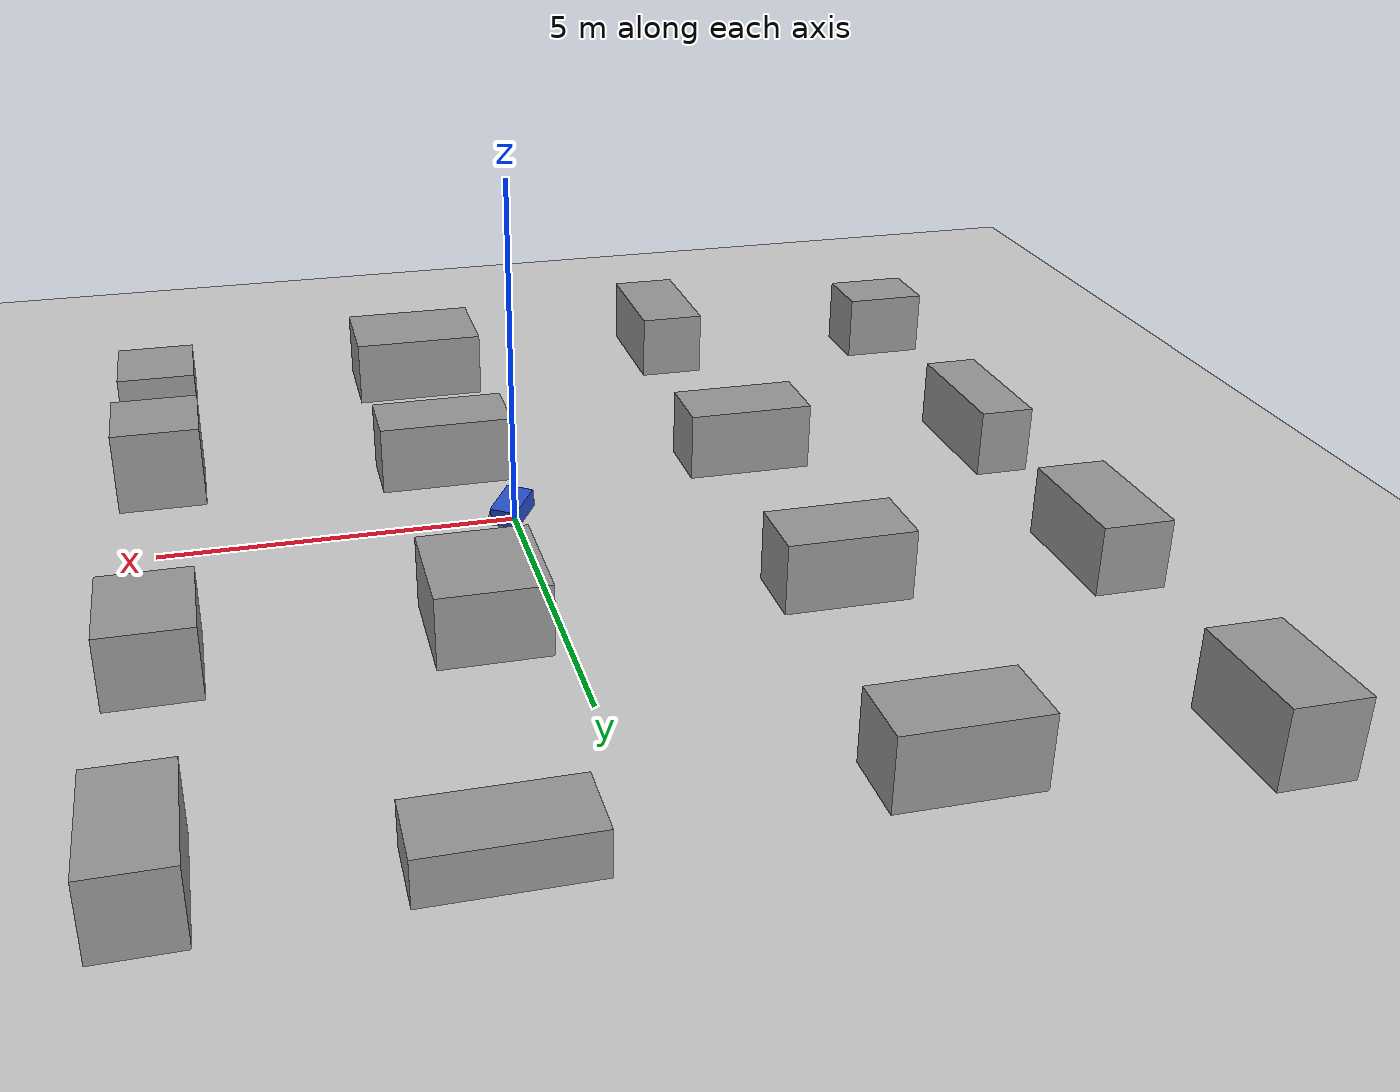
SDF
<sdf version="1.7">
 <world name="default">
  <light name="sun" type="directional">
   <pose>0 0 10 0 -0 0</pose>
   <diffuse>0.8 0.8 0.8 1</diffuse>
   <specular>0.2 0.2 0.2 1</specular>
   <attenuation>
    <range>1000</range>
    <constant>0.9</constant>
    <linear>0.01</linear>
    <quadratic>0.001</quadratic>
   </attenuation>
   <direction>-0.5 0.1 -0.9</direction>
   <spot><inner_angle>0</inner_angle><outer_angle>0</outer_angle><falloff>0</falloff></spot>
  </light>
  <model name="ground_plane">
   <static>1</static>
   <link name="link">
    <collision name="collision">
     <geometry><plane><normal>0 0 1</normal><size>100 100</size></plane></geometry>
     <surface>
      <contact><collide_bitmask>65535</collide_bitmask></contact>
      <friction><ode><mu>100</mu><mu2>50</mu2></ode></friction>
     </surface>
    </collision>
    <visual name="visual">
     <cast_shadows>0</cast_shadows>
     <geometry><plane><normal>0 0 1</normal><size>100 100</size></plane></geometry>
     <material>
      <script><uri>file://media/materials/scripts/gazebo.material</uri><name>Gazebo/Grey</name></script>
     </material>
    </visual>
   </link>
  </model>
  <gravity>0 0 -9.8</gravity>
  <magnetic_field>6e-06 2.3e-05 -4.2e-05</magnetic_field>
  <atmosphere type="adiabatic"/>
  <physics type="ode">
   <max_step_size>0.001</max_step_size>
   <real_time_factor>1</real_time_factor>
   <real_time_update_rate>1000</real_time_update_rate>
  </physics>
  <scene><ambient>0.4 0.4 0.4 1</ambient><background>0.7 0.7 0.7 1</background><shadows>1</shadows></scene>
  <spherical_coordinates>
   <surface_model>EARTH_WGS84</surface_model>
   <latitude_deg>0</latitude_deg>
   <longitude_deg>0</longitude_deg>
   <elevation>0</elevation>
   <heading_deg>0</heading_deg>
  </spherical_coordinates>
  <model name="unit_box">
   <pose>5.19407 7.24131 0.499995 0 9e-06 -1.6e-05</pose>
   <link name="link">
    <inertial>
     <mass>1</mass>
     <inertia>
      <ixx>0.166667</ixx>
      <ixy>0</ixy>
      <ixz>0</ixz>
      <iyy>0.166667</iyy>
      <iyz>0</iyz>
      <izz>0.166667</izz>
     </inertia>
    </inertial>
    <collision name="collision"><geometry><box><size>1 1.79256 1</size></box></geometry></collision>
    <visual name="visual">
     <geometry><box><size>1 1.79256 1</size></box></geometry>
     <material>
      <script><name>Gazebo/Grey</name><uri>file://media/materials/scripts/gazebo.material</uri></script>
     </material>
    </visual>
   </link>
  </model>
  <model name="unit_box_0">
   <pose>1.55656 7.5649 0.3018 -1e-05 -0 1e-06</pose>
   <link name="link">
    <inertial>
     <mass>1</mass>
     <inertia>
      <ixx>0.166667</ixx>
      <ixy>0</ixy>
      <ixz>0</ixz>
      <iyy>0.166667</iyy>
      <iyz>0</iyz>
      <izz>0.166667</izz>
     </inertia>
    </inertial>
    <collision name="collision"><geometry><box><size>2.05661 1 0.60361</size></box></geometry></collision>
    <visual name="visual">
     <geometry><box><size>2.05661 1 0.60361</size></box></geometry>
     <material>
      <script><name>Gazebo/Grey</name><uri>file://media/materials/scripts/gazebo.material</uri></script>
     </material>
    </visual>
   </link>
  </model>
  <model name="unit_box_1">
   <pose>-3.51704 7.26745 0.5 0 0 -5.6e-05</pose>
   <link name="link">
    <inertial>
     <mass>1</mass>
     <inertia>
      <ixx>0.166667</ixx>
      <ixy>0</ixy>
      <ixz>0</ixz>
      <iyy>0.166667</iyy>
      <iyz>0</iyz>
      <izz>0.166667</izz>
     </inertia>
    </inertial>
    <collision name="collision"><geometry><box><size>1.84661 1 1</size></box></geometry></collision>
    <visual name="visual">
     <geometry><box><size>1.84661 1 1</size></box></geometry>
     <material>
      <script><name>Gazebo/Grey</name><uri>file://media/materials/scripts/gazebo.material</uri></script>
     </material>
    </visual>
   </link>
  </model>
  <model name="unit_box_2">
   <pose>-7.31966 7.53116 0.541966 0 -0 1e-06</pose>
   <link name="link">
    <inertial>
     <mass>1</mass>
     <inertia>
      <ixx>0.166667</ixx>
      <ixy>0</ixy>
      <ixz>0</ixz>
      <iyy>0.166667</iyy>
      <iyz>0</iyz>
      <izz>0.166667</izz>
     </inertia>
    </inertial>
    <collision name="collision"><geometry><box><size>1.00258 1.72118 1.08393</size></box></geometry></collision>
    <visual name="visual">
     <geometry><box><size>1.00258 1.72118 1.08393</size></box></geometry>
     <material>
      <script><name>Gazebo/Grey</name><uri>file://media/materials/scripts/gazebo.material</uri></script>
     </material>
    </visual>
   </link>
  </model>
  <model name="unit_box_3">
   <pose>-7.5202 3.06253 0.499995 0 -9e-06 0</pose>
   <link name="link">
    <inertial>
     <mass>1</mass>
     <inertia>
      <ixx>0.166667</ixx>
      <ixy>0</ixy>
      <ixz>0</ixz>
      <iyy>0.166667</iyy>
      <iyz>0</iyz>
      <izz>0.166667</izz>
     </inertia>
    </inertial>
    <collision name="collision"><geometry><box><size>1 1.88719 1</size></box></geometry></collision>
    <visual name="visual">
     <geometry><box><size>1 1.88719 1</size></box></geometry>
     <material>
      <script><name>Gazebo/Grey</name><uri>file://media/materials/scripts/gazebo.material</uri></script>
     </material>
    </visual>
   </link>
  </model>
  <model name="unit_box_4">
   <pose>-7.48325 -0.826288 0.5 0 1e-06 0.00035</pose>
   <link name="link">
    <inertial>
     <mass>1</mass>
     <inertia>
      <ixx>0.166667</ixx>
      <ixy>0</ixy>
      <ixz>0</ixz>
      <iyy>0.166667</iyy>
      <iyz>0</iyz>
      <izz>0.166667</izz>
     </inertia>
    </inertial>
    <collision name="collision"><geometry><box><size>0.796349 2.0774 1</size></box></geometry></collision>
    <visual name="visual">
     <geometry><box><size>0.796349 2.0774 1</size></box></geometry>
     <material>
      <script><name>Gazebo/Grey</name><uri>file://media/materials/scripts/gazebo.material</uri></script>
     </material>
    </visual>
   </link>
  </model>
  <model name="unit_box_5">
   <pose>-7.59764 -5.35621 0.507331 0 0 -0.000837</pose>
   <link name="link">
    <inertial>
     <mass>1</mass>
     <inertia>
      <ixx>0.166667</ixx>
      <ixy>0</ixy>
      <ixz>0</ixz>
      <iyy>0.166667</iyy>
      <iyz>0</iyz>
      <izz>0.166667</izz>
     </inertia>
    </inertial>
    <collision name="collision"><geometry><box><size>1.27023 1 1.01466</size></box></geometry></collision>
    <visual name="visual">
     <geometry><box><size>1.27023 1 1.01466</size></box></geometry>
     <material>
      <script><name>Gazebo/Grey</name><uri>file://media/materials/scripts/gazebo.material</uri></script>
     </material>
    </visual>
   </link>
  </model>
  <model name="unit_box_6">
   <pose>-3.76462 3.00413 0.499995 -0 -6e-06 0.000496</pose>
   <link name="link">
    <inertial>
     <mass>1</mass>
     <inertia>
      <ixx>0.166667</ixx>
      <ixy>0</ixy>
      <ixz>0</ixz>
      <iyy>0.166667</iyy>
      <iyz>0</iyz>
      <izz>0.166667</izz>
     </inertia>
    </inertial>
    <collision name="collision"><geometry><box><size>1.76936 1 1</size></box></geometry></collision>
    <visual name="visual">
     <geometry><box><size>1.76936 1 1</size></box></geometry>
     <material>
      <script><name>Gazebo/Grey</name><uri>file://media/materials/scripts/gazebo.material</uri></script>
     </material>
    </visual>
   </link>
  </model>
  <model name="unit_box_7">
   <pose>0.948655 2.94956 0.499995 -6e-06 -0 -7.7e-05</pose>
   <link name="link">
    <inertial>
     <mass>1</mass>
     <inertia>
      <ixx>0.166667</ixx>
      <ixy>0</ixy>
      <ixz>0</ixz>
      <iyy>0.166667</iyy>
      <iyz>0</iyz>
      <izz>0.166667</izz>
     </inertia>
    </inertial>
    <collision name="collision"><geometry><box><size>1.48366 1.64602 1</size></box></geometry></collision>
    <visual name="visual">
     <geometry><box><size>1.48366 1.64602 1</size></box></geometry>
     <material>
      <script><name>Gazebo/Grey</name><uri>file://media/materials/scripts/gazebo.material</uri></script>
     </material>
    </visual>
   </link>
  </model>
  <model name="unit_box_8">
   <pose>5.05176 3.00198 0.499995 7e-06 0 -1.1e-05</pose>
   <link name="link">
    <inertial>
     <mass>1</mass>
     <inertia>
      <ixx>0.166667</ixx>
      <ixy>0</ixy>
      <ixz>0</ixz>
      <iyy>0.166667</iyy>
      <iyz>0</iyz>
      <izz>0.166667</izz>
     </inertia>
    </inertial>
    <collision name="collision"><geometry><box><size>1.20816 1.51622 1</size></box></geometry></collision>
    <visual name="visual">
     <geometry><box><size>1.20816 1.51622 1</size></box></geometry>
     <material>
      <script><name>Gazebo/Grey</name><uri>file://media/materials/scripts/gazebo.material</uri></script>
     </material>
    </visual>
   </link>
  </model>
  <model name="unit_box_9">
   <pose>-3.76267 -1.18682 0.499995 -5e-06 -2e-06 6e-06</pose>
   <link name="link">
    <inertial>
     <mass>1</mass>
     <inertia>
      <ixx>0.166667</ixx>
      <ixy>0</ixy>
      <ixz>0</ixz>
      <iyy>0.166667</iyy>
      <iyz>0</iyz>
      <izz>0.166667</izz>
     </inertia>
    </inertial>
    <collision name="collision"><geometry><box><size>1.84778 1 1</size></box></geometry></collision>
    <visual name="visual">
     <geometry><box><size>1.84778 1 1</size></box></geometry>
     <material>
      <script><name>Gazebo/Grey</name><uri>file://media/materials/scripts/gazebo.material</uri></script>
     </material>
    </visual>
   </link>
  </model>
  <model name="unit_box_10">
   <pose>0.756107 -1.79034 0.499988 0 1.2e-05 -5.2e-05</pose>
   <link name="link">
    <inertial>
     <mass>1</mass>
     <inertia>
      <ixx>0.166667</ixx>
      <ixy>0</ixy>
      <ixz>0</ixz>
      <iyy>0.166667</iyy>
      <iyz>0</iyz>
      <izz>0.166667</izz>
     </inertia>
    </inertial>
    <collision name="collision"><geometry><box><size>1.94707 1 1</size></box></geometry></collision>
    <visual name="visual">
     <geometry><box><size>1.94707 1 1</size></box></geometry>
     <material>
      <script><name>Gazebo/Grey</name><uri>file://media/materials/scripts/gazebo.material</uri></script>
     </material>
    </visual>
   </link>
  </model>
  <model name="unit_box_11">
   <pose>4.90804 -2.16639 0.60269 -0 8e-06 -3e-06</pose>
   <link name="link">
    <inertial>
     <mass>1</mass>
     <inertia>
      <ixx>0.166667</ixx>
      <ixy>0</ixy>
      <ixz>0</ixz>
      <iyy>0.166667</iyy>
      <iyz>0</iyz>
      <izz>0.166667</izz>
     </inertia>
    </inertial>
    <collision name="collision"><geometry><box><size>1.24317 1.29216 1.20539</size></box></geometry></collision>
    <visual name="visual">
     <geometry><box><size>1.24317 1.29216 1.20539</size></box></geometry>
     <material>
      <script><name>Gazebo/Grey</name><uri>file://media/materials/scripts/gazebo.material</uri></script>
     </material>
    </visual>
   </link>
  </model>
  <model name="unit_box_12">
   <pose>-3.68307 -5.81243 0.499987 1.3e-05 -0 0</pose>
   <link name="link">
    <inertial>
     <mass>1</mass>
     <inertia>
      <ixx>0.166667</ixx>
      <ixy>0</ixy>
      <ixz>0</ixz>
      <iyy>0.166667</iyy>
      <iyz>0</iyz>
      <izz>0.166667</izz>
     </inertia>
    </inertial>
    <collision name="collision"><geometry><box><size>1 1.97485 1</size></box></geometry></collision>
    <visual name="visual">
     <geometry><box><size>1 1.97485 1</size></box></geometry>
     <material>
      <script><name>Gazebo/Grey</name><uri>file://media/materials/scripts/gazebo.material</uri></script>
     </material>
    </visual>
   </link>
  </model>
  <model name="unit_box_13">
   <pose>0.680675 -5.48365 0.499985 0 -1.5e-05 4.3e-05</pose>
   <link name="link">
    <inertial>
     <mass>1</mass>
     <inertia>
      <ixx>0.166667</ixx>
      <ixy>0</ixy>
      <ixz>0</ixz>
      <iyy>0.166667</iyy>
      <iyz>0</iyz>
      <izz>0.166667</izz>
     </inertia>
    </inertial>
    <collision name="collision"><geometry><box><size>2.00423 1.44573 1</size></box></geometry></collision>
    <visual name="visual">
     <geometry><box><size>2.00423 1.44573 1</size></box></geometry>
     <material>
      <script><name>Gazebo/Grey</name><uri>file://media/materials/scripts/gazebo.material</uri></script>
     </material>
    </visual>
   </link>
  </model>
  <model name="unit_box_14">
   <pose>4.94304 -5.64455 0.341354 0 -0 0.000295</pose>
   <link name="link">
    <inertial>
     <mass>1</mass>
     <inertia>
      <ixx>0.166667</ixx>
      <ixy>0</ixy>
      <ixz>0</ixz>
      <iyy>0.166667</iyy>
      <iyz>0</iyz>
      <izz>0.166667</izz>
     </inertia>
    </inertial>
    <collision name="collision"><geometry><box><size>1.21003 1.39512 0.682708</size></box></geometry></collision>
    <visual name="visual">
     <geometry><box><size>1.21003 1.39512 0.682708</size></box></geometry>
     <material>
      <script><name>Gazebo/Grey</name><uri>file://media/materials/scripts/gazebo.material</uri></script>
     </material>
    </visual>
   </link>
  </model>
  <model name="calf">
   <link name="base_footprint">
    <inertial>
     <pose>0 0 0.3 0 -0 0</pose>
     <mass>200</mass>
     <inertia><ixx>3.97333</ixx><ixy>0</ixy><ixz>0</ixz><iyy>7.30667</iyy><iyz>0</iyz><izz>8.66667</izz></inertia>
    </inertial>
    <collision name="base_footprint_fixed_joint_lump__base_link_collision">
     <pose>0 0 0.3 0 -0 0</pose>
     <geometry><box><size>0.6 0.4 0.28</size></box></geometry>
    </collision>
    <visual name="base_footprint_visual"><geometry><box><size>0.001 0.001 0.001</size></box></geometry></visual>
    <visual name="base_footprint_fixed_joint_lump__base_link_visual_1">
     <pose>0 0 0.3 0 -0 0</pose>
     <geometry><box><size>0.6 0.4 0.28</size></box></geometry>
     <material>
      <script><name>Gazebo/Blue</name><uri>file://media/materials/scripts/gazebo.material</uri></script>
     </material>
    </visual>
    <gravity>0</gravity>
   </link>
   <joint name="left_wheel_joint" type="revolute">
    <pose relative_to="base_footprint">0.15 -0.24 0.21 0 -0 0</pose>
    <parent>base_footprint</parent>
    <child>left_wheel_link</child>
    <axis>
     <xyz>0 1 0</xyz>
     <limit><lower>-1e+16</lower><upper>1e+16</upper></limit>
     <dynamics><spring_reference>0</spring_reference><spring_stiffness>0</spring_stiffness></dynamics>
    </axis>
   </joint>
   <link name="left_wheel_link">
    <pose relative_to="left_wheel_joint">0 0 0 0 -0 0</pose>
    <inertial>
     <mass>2</mass>
     <inertia>
      <ixx>0.00426667</ixx>
      <ixy>0</ixy>
      <ixz>0</ixz>
      <iyy>0.00426667</iyy>
      <iyz>0</iyz>
      <izz>0.0064</izz>
     </inertia>
    </inertial>
    <collision name="left_wheel_link_collision">
     <pose>0 0 0 1.5708 -0 0</pose>
     <geometry><cylinder><length>0.08</length><radius>0.08</radius></cylinder></geometry>
    </collision>
    <visual name="left_wheel_link_visual">
     <pose>0 0 0 1.5708 -0 0</pose>
     <geometry><cylinder><length>0.08</length><radius>0.08</radius></cylinder></geometry>
     <material>
      <script><name>Gazebo/Gray</name><uri>file://media/materials/scripts/gazebo.material</uri></script>
     </material>
    </visual>
   </link>
   <pose>-0.000278 -0.035178 -0.0976 -0.000529 0.192121 0.945677</pose>
  </model>
 </world>
</sdf>
